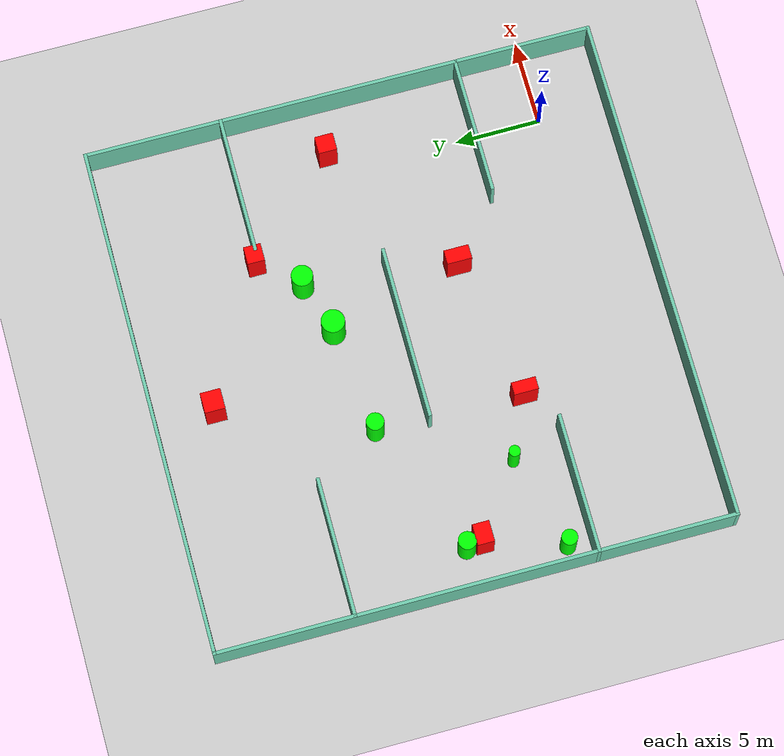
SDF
<sdf version="1.7">
 <world name="default">
  <light name="sun" type="directional">
   <pose>0 0 10 0 -0 0</pose>
   <diffuse>0.8 0.8 0.8 1</diffuse>
   <specular>0.2 0.2 0.2 1</specular>
   <attenuation>
    <range>1000</range>
    <constant>0.9</constant>
    <linear>0.01</linear>
    <quadratic>0.001</quadratic>
   </attenuation>
   <direction>-0.5 0.1 -0.9</direction>
   <spot><inner_angle>0</inner_angle><outer_angle>0</outer_angle><falloff>0</falloff></spot>
  </light>
  <model name="ground_plane">
   <static>1</static>
   <link name="link">
    <collision name="collision">
     <geometry><plane><normal>0 0 1</normal><size>100 100</size></plane></geometry>
     <surface>
      <contact><collide_bitmask>65535</collide_bitmask></contact>
      <friction><ode><mu>100</mu><mu2>50</mu2></ode></friction>
     </surface>
    </collision>
    <visual name="visual">
     <cast_shadows>0</cast_shadows>
     <geometry><plane><normal>0 0 1</normal><size>100 100</size></plane></geometry>
     <material>
      <script><uri>file://media/materials/scripts/gazebo.material</uri><name>Gazebo/Grey</name></script>
     </material>
    </visual>
   </link>
  </model>
  <gravity>0 0 -9.8</gravity>
  <magnetic_field>6e-06 2.3e-05 -4.2e-05</magnetic_field>
  <atmosphere type="adiabatic"/>
  <physics type="ode">
   <max_step_size>0.001</max_step_size>
   <real_time_factor>1</real_time_factor>
   <real_time_update_rate>1000</real_time_update_rate>
  </physics>
  <scene><ambient>0.4 0.4 0.4 1</ambient><background>0.7 0.7 0.7 1</background><shadows>1</shadows></scene>
  <spherical_coordinates>
   <surface_model>EARTH_WGS84</surface_model>
   <latitude_deg>0</latitude_deg>
   <longitude_deg>0</longitude_deg>
   <elevation>0</elevation>
   <heading_deg>0</heading_deg>
  </spherical_coordinates>
  <model name="my_base_walls">
   <link name="Wall_10">
    <collision name="Wall_10_Collision">
     <geometry><box><size>8.2 0.2 2.5</size></box></geometry>
     <pose>0 0 1.25 0 -0 0</pose>
    </collision>
    <visual name="Wall_10_Visual">
     <pose>0 0 1.25 0 -0 0</pose>
     <geometry><box><size>8.2 0.2 2.5</size></box></geometry>
     <material>
      <script><uri>file://media/materials/scripts/gazebo.material</uri><name>Gazebo/Grey</name></script>
      <ambient>0.435294 0.796078 0.67451 1</ambient>
     </material>
     <meta><layer>0</layer></meta>
    </visual>
    <pose>-11 -7 0 0 -0 0</pose>
   </link>
   <link name="Wall_12">
    <collision name="Wall_12_Collision">
     <geometry><box><size>8.2 0.2 2.5</size></box></geometry>
     <pose>0 0 1.25 0 -0 0</pose>
    </collision>
    <visual name="Wall_12_Visual">
     <pose>0 0 1.25 0 -0 0</pose>
     <geometry><box><size>8.2 0.2 2.5</size></box></geometry>
     <material>
      <script><uri>file://media/materials/scripts/gazebo.material</uri><name>Gazebo/Grey</name></script>
      <ambient>0.435294 0.796078 0.67451 1</ambient>
     </material>
     <meta><layer>0</layer></meta>
    </visual>
    <pose>-11 7 0 0 -0 0</pose>
   </link>
   <link name="Wall_14">
    <collision name="Wall_14_Collision">
     <geometry><box><size>8.2 0.2 2.5</size></box></geometry>
     <pose>0 0 1.25 0 -0 0</pose>
    </collision>
    <visual name="Wall_14_Visual">
     <pose>0 0 1.25 0 -0 0</pose>
     <geometry><box><size>8.2 0.2 2.5</size></box></geometry>
     <material>
      <script><uri>file://media/materials/scripts/gazebo.material</uri><name>Gazebo/Grey</name></script>
      <ambient>0.435294 0.796078 0.67451 1</ambient>
     </material>
     <meta><layer>0</layer></meta>
    </visual>
    <pose>11 7 0 0 -0 3.14159</pose>
   </link>
   <link name="Wall_16">
    <collision name="Wall_16_Collision">
     <geometry><box><size>10.2 0.2 2.5</size></box></geometry>
     <pose>0 0 1.25 0 -0 0</pose>
    </collision>
    <visual name="Wall_16_Visual">
     <pose>0 0 1.25 0 -0 0</pose>
     <geometry><box><size>10.2 0.2 2.5</size></box></geometry>
     <material>
      <script><uri>file://media/materials/scripts/gazebo.material</uri><name>Gazebo/Grey</name></script>
      <ambient>0.435294 0.796078 0.67451 1</ambient>
     </material>
     <meta><layer>0</layer></meta>
    </visual>
    <pose>0 0 0 0 -0 3.14159</pose>
   </link>
   <link name="Wall_2">
    <collision name="Wall_2_Collision">
     <geometry><box><size>30.2 0.2 2.5</size></box></geometry>
     <pose>0 0 1.25 0 -0 0</pose>
    </collision>
    <visual name="Wall_2_Visual">
     <pose>0 0 1.25 0 -0 0</pose>
     <geometry><box><size>30.2 0.2 2.5</size></box></geometry>
     <material>
      <script><uri>file://media/materials/scripts/gazebo.material</uri><name>Gazebo/Grey</name></script>
      <ambient>0.435294 0.796078 0.67451 1</ambient>
     </material>
     <meta><layer>0</layer></meta>
    </visual>
    <pose>0 -15 0 0 -0 3.14159</pose>
   </link>
   <link name="Wall_3">
    <collision name="Wall_3_Collision">
     <geometry><box><size>30.2 0.2 2.5</size></box></geometry>
     <pose>0 0 1.25 0 -0 0</pose>
    </collision>
    <visual name="Wall_3_Visual">
     <pose>0 0 1.25 0 -0 0</pose>
     <geometry><box><size>30.2 0.2 2.5</size></box></geometry>
     <material>
      <script><uri>file://media/materials/scripts/gazebo.material</uri><name>Gazebo/Grey</name></script>
      <ambient>0.435294 0.796078 0.67451 1</ambient>
     </material>
     <meta><layer>0</layer></meta>
    </visual>
    <pose>-15 0 0 0 -0 1.5708</pose>
   </link>
   <link name="Wall_4">
    <collision name="Wall_4_Collision">
     <geometry><box><size>30.2 0.2 2.5</size></box></geometry>
     <pose>0 0 1.25 0 -0 0</pose>
    </collision>
    <visual name="Wall_4_Visual">
     <pose>0 0 1.25 0 -0 0</pose>
     <geometry><box><size>30.2 0.2 2.5</size></box></geometry>
     <material>
      <script><uri>file://media/materials/scripts/gazebo.material</uri><name>Gazebo/Grey</name></script>
      <ambient>0.435294 0.796078 0.67451 1</ambient>
     </material>
     <meta><layer>0</layer></meta>
    </visual>
    <pose>0 15 0 0 -0 0</pose>
   </link>
   <link name="Wall_6">
    <collision name="Wall_6_Collision">
     <geometry><box><size>30.2 0.2 2.5</size></box></geometry>
     <pose>0 0 1.25 0 -0 0</pose>
    </collision>
    <visual name="Wall_6_Visual">
     <pose>0 0 1.25 0 -0 0</pose>
     <geometry><box><size>30.2 0.2 2.5</size></box></geometry>
     <material>
      <script><uri>file://media/materials/scripts/gazebo.material</uri><name>Gazebo/Grey</name></script>
      <ambient>0.435294 0.796078 0.67451 1</ambient>
     </material>
     <meta><layer>0</layer></meta>
    </visual>
    <pose>15 0 0 0 -0 1.5708</pose>
   </link>
   <link name="Wall_8">
    <collision name="Wall_8_Collision">
     <geometry><box><size>8.2 0.2 2.5</size></box></geometry>
     <pose>0 0 1.25 0 -0 0</pose>
    </collision>
    <visual name="Wall_8_Visual">
     <pose>0 0 1.25 0 -0 0</pose>
     <geometry><box><size>8.2 0.2 2.5</size></box></geometry>
     <material>
      <script><uri>file://media/materials/scripts/gazebo.material</uri><name>Gazebo/Grey</name></script>
      <ambient>0.435294 0.796078 0.67451 1</ambient>
     </material>
     <meta><layer>0</layer></meta>
    </visual>
    <pose>11 -7 0 0 -0 3.14159</pose>
   </link>
   <static>1</static>
   <pose>-11 11 0 0 -0 0</pose>
  </model>
  <model name="cylinder1">
   <static>1</static>
   <link name="link">
    <inertial>
     <mass>1</mass>
     <inertia><ixx>0.5</ixx><ixy>0</ixy><ixz>0</ixz><iyy>0.5</iyy><iyz>0</iyz><izz>1</izz></inertia>
    </inertial>
    <collision name="collision">
     <geometry><cylinder><radius>0.6861275106624048</radius><length>2.5</length></cylinder></geometry>
    </collision>
    <visual name="visual">
     <geometry><cylinder><radius>0.6861275106624048</radius><length>2.5</length></cylinder></geometry>
     <material>
      <ambient>0 1 0 1</ambient>
      <diffuse>0 1 0 1</diffuse>
      <specular>0.1 0.1 0.1 1</specular>
      <emissive>0 0 0 0</emissive>
     </material>
    </visual>
   </link>
   <pose>-9.312588719851156 14.834245339564422 1.25 0 0 0</pose>
  </model>
  <model name="cylinder2">
   <static>1</static>
   <link name="link">
    <inertial>
     <mass>1</mass>
     <inertia><ixx>0.5</ixx><ixy>0</ixy><ixz>0</ixz><iyy>0.5</iyy><iyz>0</iyz><izz>1</izz></inertia>
    </inertial>
    <collision name="collision">
     <geometry><cylinder><radius>0.4617082932843339</radius><length>2.5</length></cylinder></geometry>
    </collision>
    <visual name="visual">
     <geometry><cylinder><radius>0.4617082932843339</radius><length>2.5</length></cylinder></geometry>
     <material>
      <ambient>0 1 0 1</ambient>
      <diffuse>0 1 0 1</diffuse>
      <specular>0.1 0.1 0.1 1</specular>
      <emissive>0 0 0 0</emissive>
     </material>
    </visual>
   </link>
   <pose>-24.840394986651308 5.381052803523591 1.25 0 0 0</pose>
  </model>
  <model name="cylinder3">
   <static>1</static>
   <link name="link">
    <inertial>
     <mass>1</mass>
     <inertia><ixx>0.5</ixx><ixy>0</ixy><ixz>0</ixz><iyy>0.5</iyy><iyz>0</iyz><izz>1</izz></inertia>
    </inertial>
    <collision name="collision">
     <geometry><cylinder><radius>0.5152657908039749</radius><length>2.5</length></cylinder></geometry>
    </collision>
    <visual name="visual">
     <geometry><cylinder><radius>0.5152657908039749</radius><length>2.5</length></cylinder></geometry>
     <material>
      <ambient>0 1 0 1</ambient>
      <diffuse>0 1 0 1</diffuse>
      <specular>0.1 0.1 0.1 1</specular>
      <emissive>0 0 0 0</emissive>
     </material>
    </visual>
   </link>
   <pose>-15.60895306223035 14.063509824067953 1.25 0 0 0</pose>
  </model>
  <model name="cylinder4">
   <static>1</static>
   <link name="link">
    <inertial>
     <mass>1</mass>
     <inertia><ixx>0.5</ixx><ixy>0</ixy><ixz>0</ixz><iyy>0.5</iyy><iyz>0</iyz><izz>1</izz></inertia>
    </inertial>
    <collision name="collision">
     <geometry><cylinder><radius>0.33207344667683586</radius><length>2.5</length></cylinder></geometry>
    </collision>
    <visual name="visual">
     <geometry><cylinder><radius>0.33207344667683586</radius><length>2.5</length></cylinder></geometry>
     <material>
      <ambient>0 1 0 1</ambient>
      <diffuse>0 1 0 1</diffuse>
      <specular>0.1 0.1 0.1 1</specular>
      <emissive>0 0 0 0</emissive>
     </material>
    </visual>
   </link>
   <pose>-19.29837702848036 6.9840471548398515 1.25 0 0 0</pose>
  </model>
  <model name="cylinder5">
   <static>1</static>
   <link name="link">
    <inertial>
     <mass>1</mass>
     <inertia><ixx>0.5</ixx><ixy>0</ixy><ixz>0</ixz><iyy>0.5</iyy><iyz>0</iyz><izz>1</izz></inertia>
    </inertial>
    <collision name="collision">
     <geometry><cylinder><radius>0.5254139996402958</radius><length>2.5</length></cylinder></geometry>
    </collision>
    <visual name="visual">
     <geometry><cylinder><radius>0.5254139996402958</radius><length>2.5</length></cylinder></geometry>
     <material>
      <ambient>0 1 0 1</ambient>
      <diffuse>0 1 0 1</diffuse>
      <specular>0.1 0.1 0.1 1</specular>
      <emissive>0 0 0 0</emissive>
     </material>
    </visual>
   </link>
   <pose>-23.540134750017664 10.900301737924538 1.25 0 0 0</pose>
  </model>
  <model name="cylinder6">
   <static>1</static>
   <link name="link">
    <inertial>
     <mass>1</mass>
     <inertia><ixx>0.5</ixx><ixy>0</ixy><ixz>0</ixz><iyy>0.5</iyy><iyz>0</iyz><izz>1</izz></inertia>
    </inertial>
    <collision name="collision">
     <geometry><cylinder><radius>0.6294940295922702</radius><length>2.5</length></cylinder></geometry>
    </collision>
    <visual name="visual">
     <geometry><cylinder><radius>0.6294940295922702</radius><length>2.5</length></cylinder></geometry>
     <material>
      <ambient>0 1 0 1</ambient>
      <diffuse>0 1 0 1</diffuse>
      <specular>0.1 0.1 0.1 1</specular>
      <emissive>0 0 0 0</emissive>
     </material>
    </visual>
   </link>
   <pose>-6.252457989480504 15.840838945840623 1.25 0 0 0</pose>
  </model>
  <model name="box1">
   <static>1</static>
   <link name="link">
    <inertial>
     <mass>1</mass>
     <inertia><ixx>0.083</ixx><ixy>0</ixy><ixz>0</ixz><iyy>0.083</iyy><iyz>0</iyz><izz>0.083</izz></inertia>
    </inertial>
    <collision name="collision">
     <geometry><box><size>1.0273364100615892 1.0869573404255337 2.5</size></box></geometry>
    </collision>
    <visual name="visual">
     <geometry><box><size>1.0273364100615892 1.0869573404255337 2.5</size></box></geometry>
     <material>
      <ambient>1 0 0 1</ambient>
      <diffuse>1 0 0 1</diffuse>
      <specular>0.1 0.1 0.1 1</specular>
      <emissive>0 0 0 0</emissive>
     </material>
    </visual>
    <sensor name="my_contact" type="contact">
     <contact><collision>box_collision</collision><topic>__default_topic__</topic></contact>
    </sensor>
   </link>
   <pose>1.103533977912555 12.504672736503245 1.25 0 0 0</pose>
  </model>
  <model name="box2">
   <static>1</static>
   <link name="link">
    <inertial>
     <mass>1</mass>
     <inertia><ixx>0.083</ixx><ixy>0</ixy><ixz>0</ixz><iyy>0.083</iyy><iyz>0</iyz><izz>0.083</izz></inertia>
    </inertial>
    <collision name="collision">
     <geometry><box><size>0.7290847602696626 1.4268595655181788 2.5</size></box></geometry>
    </collision>
    <visual name="visual">
     <geometry><box><size>0.7290847602696626 1.4268595655181788 2.5</size></box></geometry>
     <material>
      <ambient>1 0 0 1</ambient>
      <diffuse>1 0 0 1</diffuse>
      <specular>0.1 0.1 0.1 1</specular>
      <emissive>0 0 0 0</emissive>
     </material>
    </visual>
    <sensor name="my_contact" type="contact">
     <contact><collision>box_collision</collision><topic>__default_topic__</topic></contact>
    </sensor>
   </link>
   <pose>-15.81313942717208 5.408729986284634 1.25 0 0 0</pose>
  </model>
  <model name="box3">
   <static>1</static>
   <link name="link">
    <inertial>
     <mass>1</mass>
     <inertia><ixx>0.083</ixx><ixy>0</ixy><ixz>0</ixz><iyy>0.083</iyy><iyz>0</iyz><izz>0.083</izz></inertia>
    </inertial>
    <collision name="collision">
     <geometry><box><size>1.2283830312677368 0.9796766515824508 2.5</size></box></geometry>
    </collision>
    <visual name="visual">
     <geometry><box><size>1.2283830312677368 0.9796766515824508 2.5</size></box></geometry>
     <material>
      <ambient>1 0 0 1</ambient>
      <diffuse>1 0 0 1</diffuse>
      <specular>0.1 0.1 0.1 1</specular>
      <emissive>0 0 0 0</emissive>
     </material>
    </visual>
    <sensor name="my_contact" type="contact">
     <contact><collision>box_collision</collision><topic>__default_topic__</topic></contact>
    </sensor>
   </link>
   <pose>-23.35306720280597 9.932144882574011 1.25 0 0 0</pose>
  </model>
  <model name="box4">
   <static>1</static>
   <link name="link">
    <inertial>
     <mass>1</mass>
     <inertia><ixx>0.083</ixx><ixy>0</ixy><ixz>0</ixz><iyy>0.083</iyy><iyz>0</iyz><izz>0.083</izz></inertia>
    </inertial>
    <collision name="collision">
     <geometry><box><size>1.195803168147342 1.1857598474548885 2.5</size></box></geometry>
    </collision>
    <visual name="visual">
     <geometry><box><size>1.195803168147342 1.1857598474548885 2.5</size></box></geometry>
     <material>
      <ambient>1 0 0 1</ambient>
      <diffuse>1 0 0 1</diffuse>
      <specular>0.1 0.1 0.1 1</specular>
      <emissive>0 0 0 0</emissive>
     </material>
    </visual>
    <sensor name="my_contact" type="contact">
     <contact><collision>box_collision</collision><topic>__default_topic__</topic></contact>
    </sensor>
   </link>
   <pose>-12.055198337405606 22.548916803358555 1.25 0 0 0</pose>
  </model>
  <model name="box5">
   <static>1</static>
   <link name="link">
    <inertial>
     <mass>1</mass>
     <inertia><ixx>0.083</ixx><ixy>0</ixy><ixz>0</ixz><iyy>0.083</iyy><iyz>0</iyz><izz>0.083</izz></inertia>
    </inertial>
    <collision name="collision">
     <geometry><box><size>0.8278610996454111 1.4565349555213847 2.5</size></box></geometry>
    </collision>
    <visual name="visual">
     <geometry><box><size>0.8278610996454111 1.4565349555213847 2.5</size></box></geometry>
     <material>
      <ambient>1 0 0 1</ambient>
      <diffuse>1 0 0 1</diffuse>
      <specular>0.1 0.1 0.1 1</specular>
      <emissive>0 0 0 0</emissive>
     </material>
    </visual>
    <sensor name="my_contact" type="contact">
     <contact><collision>box_collision</collision><topic>__default_topic__</topic></contact>
    </sensor>
   </link>
   <pose>-7.352401786584423 6.970795416500774 1.25 0 0 0</pose>
  </model>
  <model name="box6">
   <static>1</static>
   <link name="link">
    <inertial>
     <mass>1</mass>
     <inertia><ixx>0.083</ixx><ixy>0</ixy><ixz>0</ixz><iyy>0.083</iyy><iyz>0</iyz><izz>0.083</izz></inertia>
    </inertial>
    <collision name="collision">
     <geometry><box><size>1.034727391833453 1.0079144144902428 2.5</size></box></geometry>
    </collision>
    <visual name="visual">
     <geometry><box><size>1.034727391833453 1.0079144144902428 2.5</size></box></geometry>
     <material>
      <ambient>1 0 0 1</ambient>
      <diffuse>1 0 0 1</diffuse>
      <specular>0.1 0.1 0.1 1</specular>
      <emissive>0 0 0 0</emissive>
     </material>
    </visual>
    <sensor name="my_contact" type="contact">
     <contact><collision>box_collision</collision><topic>__default_topic__</topic></contact>
    </sensor>
   </link>
   <pose>-4.281092787867577 18.141478165609477 1.25 0 0 0</pose>
  </model>
 </world>
</sdf>
